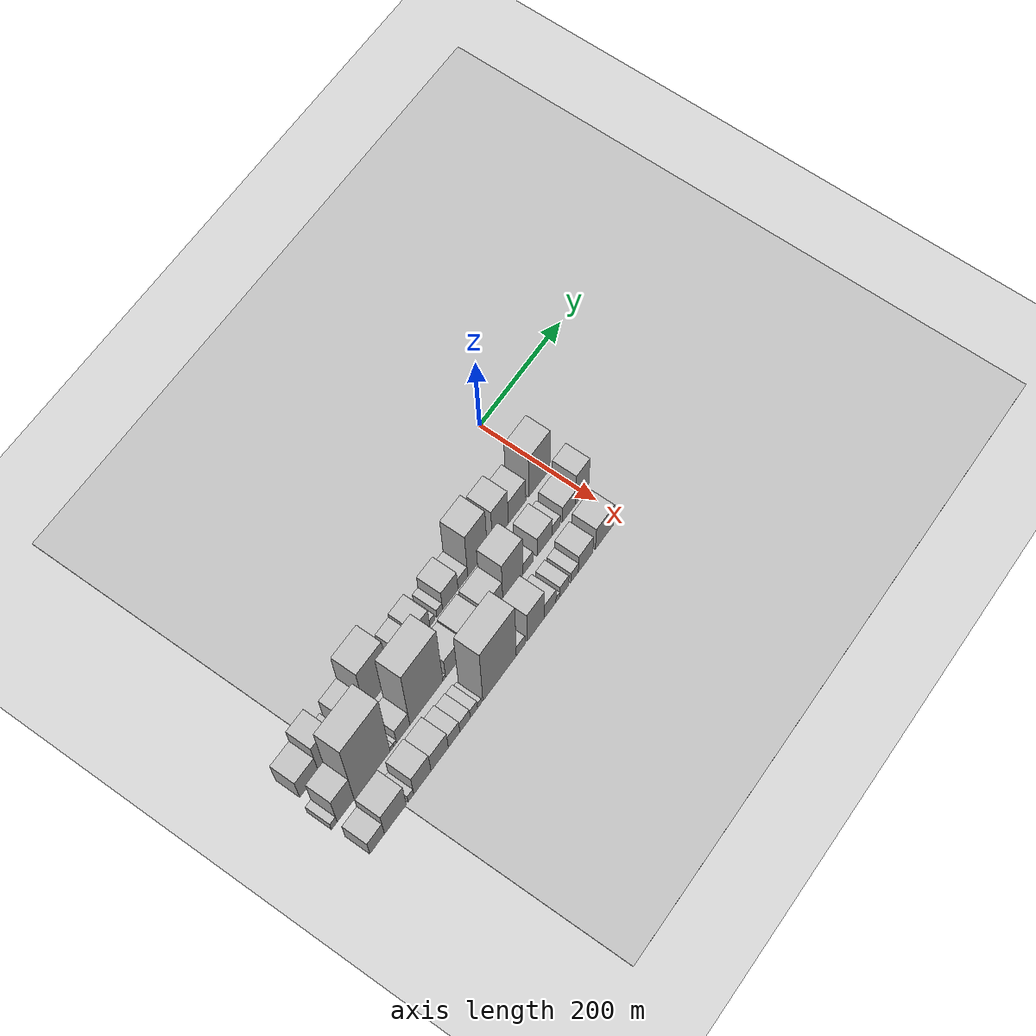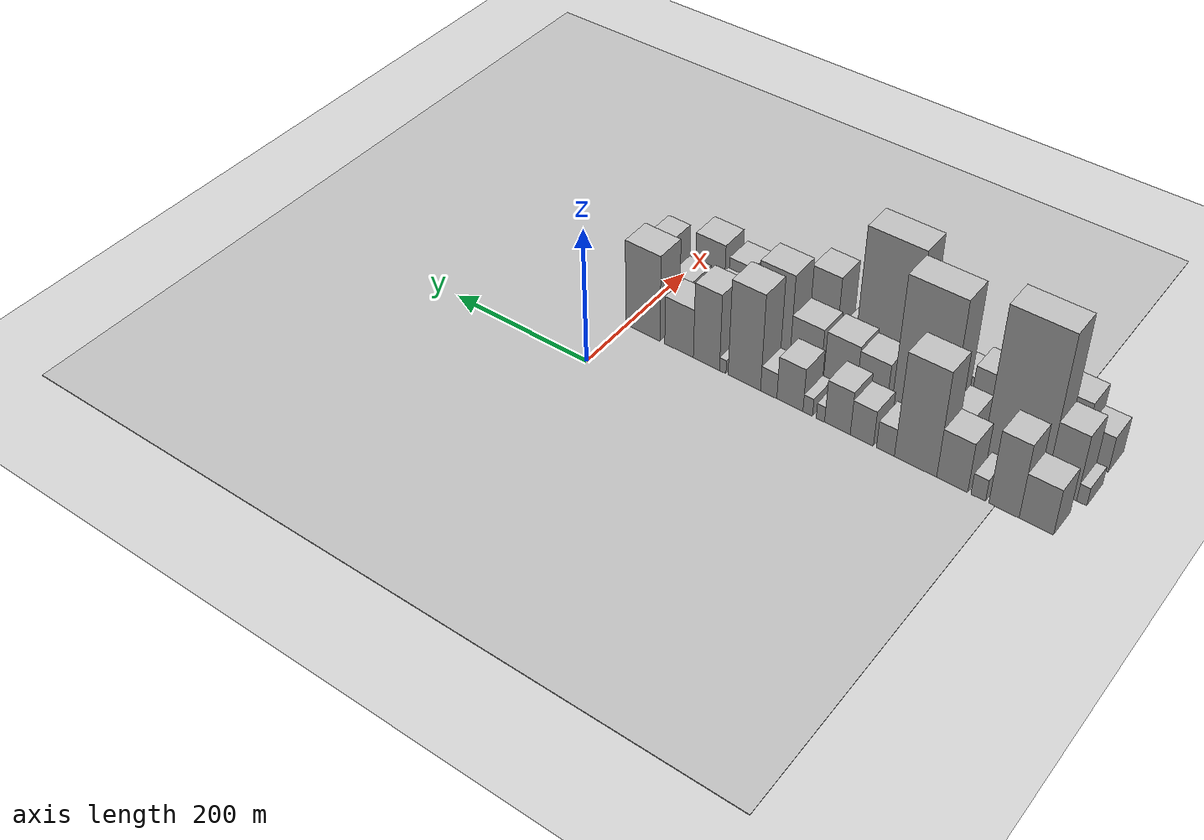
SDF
<sdf version="1.6">
 <world name="default">
  <include><name>ground_plane_1</name><uri>model://HANNAS_ground_plane</uri></include>
  <include>
   <name>ground_plane_2</name>
   <uri>model://HANNAS_ground_plane</uri>
   <pose>100 0 0  0 0 0</pose>
  </include>
  <model name="building_1">
   <static>1</static>
   <pose>100.0000 -549.5142 0 0.000000 0.000000 0.000000</pose>
   <link name="link">
    <pose>0 0 34.50 0 0 0</pose>
    <collision name="collision"><geometry><box><size>40.0000 40.9715 69.0000</size></box></geometry></collision>
    <visual name="visual">
     <cast_shadows>0</cast_shadows>
     <geometry><box><size>40.0000 40.9715 69.0000</size></box></geometry>
     <material>
      <script>
       <uri>model://HANNAS_wall/materials/scripts</uri>
       <uri>model://HANNAS_wall/materials/textures</uri>
       <name>vrc/HANNAS_wall</name>
      </script>
     </material>
    </visual>
   </link>
  </model>
  <model name="building_2">
   <static>1</static>
   <pose>100.0000 -510.6630 0 0.000000 0.000000 0.000000</pose>
   <link name="link">
    <pose>0 0 55.50 0 0 0</pose>
    <collision name="collision"><geometry><box><size>40.0000 36.7310 111.0000</size></box></geometry></collision>
    <visual name="visual">
     <cast_shadows>0</cast_shadows>
     <geometry><box><size>40.0000 36.7310 111.0000</size></box></geometry>
     <material>
      <script>
       <uri>model://HANNAS_wall/materials/scripts</uri>
       <uri>model://HANNAS_wall/materials/textures</uri>
       <name>vrc/HANNAS_wall</name>
      </script>
     </material>
    </visual>
   </link>
  </model>
  <model name="building_3">
   <static>1</static>
   <pose>100.0000 -479.3074 0 0.000000 0.000000 0.000000</pose>
   <link name="link">
    <pose>0 0 16.50 0 0 0</pose>
    <collision name="collision"><geometry><box><size>40.0000 17.9802 33.0000</size></box></geometry></collision>
    <visual name="visual">
     <cast_shadows>0</cast_shadows>
     <geometry><box><size>40.0000 17.9802 33.0000</size></box></geometry>
     <material>
      <script>
       <uri>model://HANNAS_wall/materials/scripts</uri>
       <uri>model://HANNAS_wall/materials/textures</uri>
       <name>vrc/HANNAS_wall</name>
      </script>
     </material>
    </visual>
   </link>
  </model>
  <model name="building_4">
   <static>1</static>
   <pose>100.0000 -446.9701 0 0.000000 0.000000 0.000000</pose>
   <link name="link">
    <pose>0 0 37.50 0 0 0</pose>
    <collision name="collision"><geometry><box><size>40.0000 38.6944 75.0000</size></box></geometry></collision>
    <visual name="visual">
     <cast_shadows>0</cast_shadows>
     <geometry><box><size>40.0000 38.6944 75.0000</size></box></geometry>
     <material>
      <script>
       <uri>model://HANNAS_wall/materials/scripts</uri>
       <uri>model://HANNAS_wall/materials/textures</uri>
       <name>vrc/HANNAS_wall</name>
      </script>
     </material>
    </visual>
   </link>
  </model>
  <model name="building_5">
   <static>1</static>
   <pose>100.0000 -400.6949 0 0.000000 0.000000 0.000000</pose>
   <link name="link">
    <pose>0 0 79.50 0 0 0</pose>
    <collision name="collision"><geometry><box><size>40.0000 53.8561 159.0000</size></box></geometry></collision>
    <visual name="visual">
     <cast_shadows>0</cast_shadows>
     <geometry><box><size>40.0000 53.8561 159.0000</size></box></geometry>
     <material>
      <script>
       <uri>model://HANNAS_wall/materials/scripts</uri>
       <uri>model://HANNAS_wall/materials/textures</uri>
       <name>vrc/HANNAS_wall</name>
      </script>
     </material>
    </visual>
   </link>
  </model>
  <model name="building_6">
   <static>1</static>
   <pose>100.0000 -362.1579 0 0.000000 0.000000 0.000000</pose>
   <link name="link">
    <pose>0 0 21.00 0 0 0</pose>
    <collision name="collision"><geometry><box><size>40.0000 23.2179 42.0000</size></box></geometry></collision>
    <visual name="visual">
     <cast_shadows>0</cast_shadows>
     <geometry><box><size>40.0000 23.2179 42.0000</size></box></geometry>
     <material>
      <script>
       <uri>model://HANNAS_wall/materials/scripts</uri>
       <uri>model://HANNAS_wall/materials/textures</uri>
       <name>vrc/HANNAS_wall</name>
      </script>
     </material>
    </visual>
   </link>
  </model>
  <model name="building_7">
   <static>1</static>
   <pose>100.0000 -331.3385 0 0.000000 0.000000 0.000000</pose>
   <link name="link">
    <pose>0 0 27.00 0 0 0</pose>
    <collision name="collision"><geometry><box><size>40.0000 30.4209 54.0000</size></box></geometry></collision>
    <visual name="visual">
     <cast_shadows>0</cast_shadows>
     <geometry><box><size>40.0000 30.4209 54.0000</size></box></geometry>
     <material>
      <script>
       <uri>model://HANNAS_wall/materials/scripts</uri>
       <uri>model://HANNAS_wall/materials/textures</uri>
       <name>vrc/HANNAS_wall</name>
      </script>
     </material>
    </visual>
   </link>
  </model>
  <model name="building_8">
   <static>1</static>
   <pose>100.0000 -299.0289 0 0.000000 0.000000 0.000000</pose>
   <link name="link">
    <pose>0 0 33.00 0 0 0</pose>
    <collision name="collision"><geometry><box><size>40.0000 34.1982 66.0000</size></box></geometry></collision>
    <visual name="visual">
     <cast_shadows>0</cast_shadows>
     <geometry><box><size>40.0000 34.1982 66.0000</size></box></geometry>
     <material>
      <script>
       <uri>model://HANNAS_wall/materials/scripts</uri>
       <uri>model://HANNAS_wall/materials/textures</uri>
       <name>vrc/HANNAS_wall</name>
      </script>
     </material>
    </visual>
   </link>
  </model>
  <model name="building_9">
   <static>1</static>
   <pose>100.0000 -276.3239 0 0.000000 0.000000 0.000000</pose>
   <link name="link">
    <pose>0 0 12.00 0 0 0</pose>
    <collision name="collision"><geometry><box><size>40.0000 11.2118 24.0000</size></box></geometry></collision>
    <visual name="visual">
     <cast_shadows>0</cast_shadows>
     <geometry><box><size>40.0000 11.2118 24.0000</size></box></geometry>
     <material>
      <script>
       <uri>model://HANNAS_wall/materials/scripts</uri>
       <uri>model://HANNAS_wall/materials/textures</uri>
       <name>vrc/HANNAS_wall</name>
      </script>
     </material>
    </visual>
   </link>
  </model>
  <model name="building_10">
   <static>1</static>
   <pose>100.0000 -259.2312 0 0.000000 0.000000 0.000000</pose>
   <link name="link">
    <pose>0 0 13.50 0 0 0</pose>
    <collision name="collision"><geometry><box><size>40.0000 12.9735 27.0000</size></box></geometry></collision>
    <visual name="visual">
     <cast_shadows>0</cast_shadows>
     <geometry><box><size>40.0000 12.9735 27.0000</size></box></geometry>
     <material>
      <script>
       <uri>model://HANNAS_wall/materials/scripts</uri>
       <uri>model://HANNAS_wall/materials/textures</uri>
       <name>vrc/HANNAS_wall</name>
      </script>
     </material>
    </visual>
   </link>
  </model>
  <model name="building_11">
   <static>1</static>
   <pose>100.0000 -234.8249 0 0.000000 0.000000 0.000000</pose>
   <link name="link">
    <pose>0 0 33.00 0 0 0</pose>
    <collision name="collision"><geometry><box><size>40.0000 35.8391 66.0000</size></box></geometry></collision>
    <visual name="visual">
     <cast_shadows>0</cast_shadows>
     <geometry><box><size>40.0000 35.8391 66.0000</size></box></geometry>
     <material>
      <script>
       <uri>model://HANNAS_wall/materials/scripts</uri>
       <uri>model://HANNAS_wall/materials/textures</uri>
       <name>vrc/HANNAS_wall</name>
      </script>
     </material>
    </visual>
   </link>
  </model>
  <model name="building_12">
   <static>1</static>
   <pose>100.0000 -205.6137 0 0.000000 0.000000 0.000000</pose>
   <link name="link">
    <pose>0 0 19.50 0 0 0</pose>
    <collision name="collision"><geometry><box><size>40.0000 22.5834 39.0000</size></box></geometry></collision>
    <visual name="visual">
     <cast_shadows>0</cast_shadows>
     <geometry><box><size>40.0000 22.5834 39.0000</size></box></geometry>
     <material>
      <script>
       <uri>model://HANNAS_wall/materials/scripts</uri>
       <uri>model://HANNAS_wall/materials/textures</uri>
       <name>vrc/HANNAS_wall</name>
      </script>
     </material>
    </visual>
   </link>
  </model>
  <model name="building_13">
   <static>1</static>
   <pose>100.0000 -171.4702 0 0.000000 0.000000 0.000000</pose>
   <link name="link">
    <pose>0 0 73.50 0 0 0</pose>
    <collision name="collision"><geometry><box><size>40.0000 45.7037 147.0000</size></box></geometry></collision>
    <visual name="visual">
     <cast_shadows>0</cast_shadows>
     <geometry><box><size>40.0000 45.7037 147.0000</size></box></geometry>
     <material>
      <script>
       <uri>model://HANNAS_wall/materials/scripts</uri>
       <uri>model://HANNAS_wall/materials/textures</uri>
       <name>vrc/HANNAS_wall</name>
      </script>
     </material>
    </visual>
   </link>
  </model>
  <model name="building_14">
   <static>1</static>
   <pose>100.0000 -140.9780 0 0.000000 0.000000 0.000000</pose>
   <link name="link">
    <pose>0 0 10.50 0 0 0</pose>
    <collision name="collision"><geometry><box><size>40.0000 9.2807 21.0000</size></box></geometry></collision>
    <visual name="visual">
     <cast_shadows>0</cast_shadows>
     <geometry><box><size>40.0000 9.2807 21.0000</size></box></geometry>
     <material>
      <script>
       <uri>model://HANNAS_wall/materials/scripts</uri>
       <uri>model://HANNAS_wall/materials/textures</uri>
       <name>vrc/HANNAS_wall</name>
      </script>
     </material>
    </visual>
   </link>
  </model>
  <model name="building_15">
   <static>1</static>
   <pose>100.0000 -117.5047 0 0.000000 0.000000 0.000000</pose>
   <link name="link">
    <pose>0 0 58.50 0 0 0</pose>
    <collision name="collision"><geometry><box><size>40.0000 37.6661 117.0000</size></box></geometry></collision>
    <visual name="visual">
     <cast_shadows>0</cast_shadows>
     <geometry><box><size>40.0000 37.6661 117.0000</size></box></geometry>
     <material>
      <script>
       <uri>model://HANNAS_wall/materials/scripts</uri>
       <uri>model://HANNAS_wall/materials/textures</uri>
       <name>vrc/HANNAS_wall</name>
      </script>
     </material>
    </visual>
   </link>
  </model>
  <model name="building_16">
   <static>1</static>
   <pose>100.0000 -77.7302 0 0.000000 0.000000 0.000000</pose>
   <link name="link">
    <pose>0 0 37.50 0 0 0</pose>
    <collision name="collision"><geometry><box><size>40.0000 41.8828 75.0000</size></box></geometry></collision>
    <visual name="visual">
     <cast_shadows>0</cast_shadows>
     <geometry><box><size>40.0000 41.8828 75.0000</size></box></geometry>
     <material>
      <script>
       <uri>model://HANNAS_wall/materials/scripts</uri>
       <uri>model://HANNAS_wall/materials/textures</uri>
       <name>vrc/HANNAS_wall</name>
      </script>
     </material>
    </visual>
   </link>
  </model>
  <model name="building_17">
   <static>1</static>
   <pose>100.0000 -24.1237 0 0.000000 0.000000 0.000000</pose>
   <link name="link">
    <pose>0 0 66.00 0 0 0</pose>
    <collision name="collision"><geometry><box><size>40.0000 51.3303 132.0000</size></box></geometry></collision>
    <visual name="visual">
     <cast_shadows>0</cast_shadows>
     <geometry><box><size>40.0000 51.3303 132.0000</size></box></geometry>
     <material>
      <script>
       <uri>model://HANNAS_wall/materials/scripts</uri>
       <uri>model://HANNAS_wall/materials/textures</uri>
       <name>vrc/HANNAS_wall</name>
      </script>
     </material>
    </visual>
   </link>
  </model>
  <model name="building_35">
   <static>1</static>
   <pose>160.0000 -573.9168 0 0.000000 0.000000 0.000000</pose>
   <link name="link">
    <pose>0 0 13.50 0 0 0</pose>
    <collision name="collision"><geometry><box><size>40.0000 12.1663 27.0000</size></box></geometry></collision>
    <visual name="visual">
     <cast_shadows>0</cast_shadows>
     <geometry><box><size>40.0000 12.1663 27.0000</size></box></geometry>
     <material>
      <script>
       <uri>model://HANNAS_wall/materials/scripts</uri>
       <uri>model://HANNAS_wall/materials/textures</uri>
       <name>vrc/HANNAS_wall</name>
      </script>
     </material>
    </visual>
   </link>
  </model>
  <model name="building_36">
   <static>1</static>
   <pose>160.0000 -549.4034 0 0.000000 0.000000 0.000000</pose>
   <link name="link">
    <pose>0 0 49.50 0 0 0</pose>
    <collision name="collision"><geometry><box><size>40.0000 36.8605 99.0000</size></box></geometry></collision>
    <visual name="visual">
     <cast_shadows>0</cast_shadows>
     <geometry><box><size>40.0000 36.8605 99.0000</size></box></geometry>
     <material>
      <script>
       <uri>model://HANNAS_wall/materials/scripts</uri>
       <uri>model://HANNAS_wall/materials/textures</uri>
       <name>vrc/HANNAS_wall</name>
      </script>
     </material>
    </visual>
   </link>
  </model>
  <model name="building_37">
   <static>1</static>
   <pose>160.0000 -491.6236 0 0.000000 0.000000 0.000000</pose>
   <link name="link">
    <pose>0 0 112.50 0 0 0</pose>
    <collision name="collision"><geometry><box><size>40.0000 78.6990 225.0000</size></box></geometry></collision>
    <visual name="visual">
     <cast_shadows>0</cast_shadows>
     <geometry><box><size>40.0000 78.6990 225.0000</size></box></geometry>
     <material>
      <script>
       <uri>model://HANNAS_wall/materials/scripts</uri>
       <uri>model://HANNAS_wall/materials/textures</uri>
       <name>vrc/HANNAS_wall</name>
      </script>
     </material>
    </visual>
   </link>
  </model>
  <model name="building_38">
   <static>1</static>
   <pose>160.0000 -448.5297 0 0.000000 0.000000 0.000000</pose>
   <link name="link">
    <pose>0 0 7.50 0 0 0</pose>
    <collision name="collision"><geometry><box><size>40.0000 7.4889 15.0000</size></box></geometry></collision>
    <visual name="visual">
     <cast_shadows>0</cast_shadows>
     <geometry><box><size>40.0000 7.4889 15.0000</size></box></geometry>
     <material>
      <script>
       <uri>model://HANNAS_wall/materials/scripts</uri>
       <uri>model://HANNAS_wall/materials/textures</uri>
       <name>vrc/HANNAS_wall</name>
      </script>
     </material>
    </visual>
   </link>
  </model>
  <model name="building_39">
   <static>1</static>
   <pose>160.0000 -441.5887 0 0.000000 0.000000 0.000000</pose>
   <link name="link">
    <pose>0 0 7.50 0 0 0</pose>
    <collision name="collision"><geometry><box><size>40.0000 6.3932 15.0000</size></box></geometry></collision>
    <visual name="visual">
     <cast_shadows>0</cast_shadows>
     <geometry><box><size>40.0000 6.3932 15.0000</size></box></geometry>
     <material>
      <script>
       <uri>model://HANNAS_wall/materials/scripts</uri>
       <uri>model://HANNAS_wall/materials/textures</uri>
       <name>vrc/HANNAS_wall</name>
      </script>
     </material>
    </visual>
   </link>
  </model>
  <model name="building_40">
   <static>1</static>
   <pose>160.0000 -423.5004 0 0.000000 0.000000 0.000000</pose>
   <link name="link">
    <pose>0 0 27.00 0 0 0</pose>
    <collision name="collision"><geometry><box><size>40.0000 29.7834 54.0000</size></box></geometry></collision>
    <visual name="visual">
     <cast_shadows>0</cast_shadows>
     <geometry><box><size>40.0000 29.7834 54.0000</size></box></geometry>
     <material>
      <script>
       <uri>model://HANNAS_wall/materials/scripts</uri>
       <uri>model://HANNAS_wall/materials/textures</uri>
       <name>vrc/HANNAS_wall</name>
      </script>
     </material>
    </visual>
   </link>
  </model>
  <model name="building_41">
   <static>1</static>
   <pose>160.0000 -371.4019 0 0.000000 0.000000 0.000000</pose>
   <link name="link">
    <pose>0 0 103.50 0 0 0</pose>
    <collision name="collision"><geometry><box><size>40.0000 74.4134 207.0000</size></box></geometry></collision>
    <visual name="visual">
     <cast_shadows>0</cast_shadows>
     <geometry><box><size>40.0000 74.4134 207.0000</size></box></geometry>
     <material>
      <script>
       <uri>model://HANNAS_wall/materials/scripts</uri>
       <uri>model://HANNAS_wall/materials/textures</uri>
       <name>vrc/HANNAS_wall</name>
      </script>
     </material>
    </visual>
   </link>
  </model>
  <model name="building_42">
   <static>1</static>
   <pose>160.0000 -331.1352 0 0.000000 0.000000 0.000000</pose>
   <link name="link">
    <pose>0 0 7.50 0 0 0</pose>
    <collision name="collision"><geometry><box><size>40.0000 6.1200 15.0000</size></box></geometry></collision>
    <visual name="visual">
     <cast_shadows>0</cast_shadows>
     <geometry><box><size>40.0000 6.1200 15.0000</size></box></geometry>
     <material>
      <script>
       <uri>model://HANNAS_wall/materials/scripts</uri>
       <uri>model://HANNAS_wall/materials/textures</uri>
       <name>vrc/HANNAS_wall</name>
      </script>
     </material>
    </visual>
   </link>
  </model>
  <model name="building_43">
   <static>1</static>
   <pose>160.0000 -307.8926 0 0.000000 0.000000 0.000000</pose>
   <link name="link">
    <pose>0 0 34.50 0 0 0</pose>
    <collision name="collision"><geometry><box><size>40.0000 40.3653 69.0000</size></box></geometry></collision>
    <visual name="visual">
     <cast_shadows>0</cast_shadows>
     <geometry><box><size>40.0000 40.3653 69.0000</size></box></geometry>
     <material>
      <script>
       <uri>model://HANNAS_wall/materials/scripts</uri>
       <uri>model://HANNAS_wall/materials/textures</uri>
       <name>vrc/HANNAS_wall</name>
      </script>
     </material>
    </visual>
   </link>
  </model>
  <model name="building_44">
   <static>1</static>
   <pose>160.0000 -265.3622 0 0.000000 0.000000 0.000000</pose>
   <link name="link">
    <pose>0 0 37.50 0 0 0</pose>
    <collision name="collision"><geometry><box><size>40.0000 44.6956 75.0000</size></box></geometry></collision>
    <visual name="visual">
     <cast_shadows>0</cast_shadows>
     <geometry><box><size>40.0000 44.6956 75.0000</size></box></geometry>
     <material>
      <script>
       <uri>model://HANNAS_wall/materials/scripts</uri>
       <uri>model://HANNAS_wall/materials/textures</uri>
       <name>vrc/HANNAS_wall</name>
      </script>
     </material>
    </visual>
   </link>
  </model>
  <model name="building_45">
   <static>1</static>
   <pose>160.0000 -217.4065 0 0.000000 0.000000 0.000000</pose>
   <link name="link">
    <pose>0 0 37.50 0 0 0</pose>
    <collision name="collision"><geometry><box><size>40.0000 43.2156 75.0000</size></box></geometry></collision>
    <visual name="visual">
     <cast_shadows>0</cast_shadows>
     <geometry><box><size>40.0000 43.2156 75.0000</size></box></geometry>
     <material>
      <script>
       <uri>model://HANNAS_wall/materials/scripts</uri>
       <uri>model://HANNAS_wall/materials/textures</uri>
       <name>vrc/HANNAS_wall</name>
      </script>
     </material>
    </visual>
   </link>
  </model>
  <model name="building_46">
   <static>1</static>
   <pose>160.0000 -172.0461 0 0.000000 0.000000 0.000000</pose>
   <link name="link">
    <pose>0 0 67.50 0 0 0</pose>
    <collision name="collision"><geometry><box><size>40.0000 47.5053 135.0000</size></box></geometry></collision>
    <visual name="visual">
     <cast_shadows>0</cast_shadows>
     <geometry><box><size>40.0000 47.5053 135.0000</size></box></geometry>
     <material>
      <script>
       <uri>model://HANNAS_wall/materials/scripts</uri>
       <uri>model://HANNAS_wall/materials/textures</uri>
       <name>vrc/HANNAS_wall</name>
      </script>
     </material>
    </visual>
   </link>
  </model>
  <model name="building_47">
   <static>1</static>
   <pose>160.0000 -136.6399 0 0.000000 0.000000 0.000000</pose>
   <link name="link">
    <pose>0 0 19.50 0 0 0</pose>
    <collision name="collision"><geometry><box><size>40.0000 23.3071 39.0000</size></box></geometry></collision>
    <visual name="visual">
     <cast_shadows>0</cast_shadows>
     <geometry><box><size>40.0000 23.3071 39.0000</size></box></geometry>
     <material>
      <script>
       <uri>model://HANNAS_wall/materials/scripts</uri>
       <uri>model://HANNAS_wall/materials/textures</uri>
       <name>vrc/HANNAS_wall</name>
      </script>
     </material>
    </visual>
   </link>
  </model>
  <model name="building_48">
   <static>1</static>
   <pose>160.0000 -96.7588 0 0.000000 0.000000 0.000000</pose>
   <link name="link">
    <pose>0 0 31.50 0 0 0</pose>
    <collision name="collision"><geometry><box><size>40.0000 36.4550 63.0000</size></box></geometry></collision>
    <visual name="visual">
     <cast_shadows>0</cast_shadows>
     <geometry><box><size>40.0000 36.4550 63.0000</size></box></geometry>
     <material>
      <script>
       <uri>model://HANNAS_wall/materials/scripts</uri>
       <uri>model://HANNAS_wall/materials/textures</uri>
       <name>vrc/HANNAS_wall</name>
      </script>
     </material>
    </visual>
   </link>
  </model>
  <model name="building_49">
   <static>1</static>
   <pose>160.0000 -68.9555 0 0.000000 0.000000 0.000000</pose>
   <link name="link">
    <pose>0 0 18.00 0 0 0</pose>
    <collision name="collision"><geometry><box><size>40.0000 19.1515 36.0000</size></box></geometry></collision>
    <visual name="visual">
     <cast_shadows>0</cast_shadows>
     <geometry><box><size>40.0000 19.1515 36.0000</size></box></geometry>
     <material>
      <script>
       <uri>model://HANNAS_wall/materials/scripts</uri>
       <uri>model://HANNAS_wall/materials/textures</uri>
       <name>vrc/HANNAS_wall</name>
      </script>
     </material>
    </visual>
   </link>
  </model>
  <model name="building_50">
   <static>1</static>
   <pose>160.0000 -38.3128 0 0.000000 0.000000 0.000000</pose>
   <link name="link">
    <pose>0 0 27.00 0 0 0</pose>
    <collision name="collision"><geometry><box><size>40.0000 32.1339 54.0000</size></box></geometry></collision>
    <visual name="visual">
     <cast_shadows>0</cast_shadows>
     <geometry><box><size>40.0000 32.1339 54.0000</size></box></geometry>
     <material>
      <script>
       <uri>model://HANNAS_wall/materials/scripts</uri>
       <uri>model://HANNAS_wall/materials/textures</uri>
       <name>vrc/HANNAS_wall</name>
      </script>
     </material>
    </visual>
   </link>
  </model>
  <model name="building_51">
   <static>1</static>
   <pose>160.0000 -6.1934 0 0.000000 0.000000 0.000000</pose>
   <link name="link">
    <pose>0 0 51.00 0 0 0</pose>
    <collision name="collision"><geometry><box><size>40.0000 32.1048 102.0000</size></box></geometry></collision>
    <visual name="visual">
     <cast_shadows>0</cast_shadows>
     <geometry><box><size>40.0000 32.1048 102.0000</size></box></geometry>
     <material>
      <script>
       <uri>model://HANNAS_wall/materials/scripts</uri>
       <uri>model://HANNAS_wall/materials/textures</uri>
       <name>vrc/HANNAS_wall</name>
      </script>
     </material>
    </visual>
   </link>
  </model>
  <model name="building_69">
   <static>1</static>
   <pose>220.0000 -561.0110 0 0.000000 0.000000 0.000000</pose>
   <link name="link">
    <pose>0 0 27.00 0 0 0</pose>
    <collision name="collision"><geometry><box><size>40.0000 31.9781 54.0000</size></box></geometry></collision>
    <visual name="visual">
     <cast_shadows>0</cast_shadows>
     <geometry><box><size>40.0000 31.9781 54.0000</size></box></geometry>
     <material>
      <script>
       <uri>model://HANNAS_wall/materials/scripts</uri>
       <uri>model://HANNAS_wall/materials/textures</uri>
       <name>vrc/HANNAS_wall</name>
      </script>
     </material>
    </visual>
   </link>
  </model>
  <model name="building_70">
   <static>1</static>
   <pose>220.0000 -521.2297 0 0.000000 0.000000 0.000000</pose>
   <link name="link">
    <pose>0 0 43.50 0 0 0</pose>
    <collision name="collision"><geometry><box><size>40.0000 47.5845 87.0000</size></box></geometry></collision>
    <visual name="visual">
     <cast_shadows>0</cast_shadows>
     <geometry><box><size>40.0000 47.5845 87.0000</size></box></geometry>
     <material>
      <script>
       <uri>model://HANNAS_wall/materials/scripts</uri>
       <uri>model://HANNAS_wall/materials/textures</uri>
       <name>vrc/HANNAS_wall</name>
      </script>
     </material>
    </visual>
   </link>
  </model>
  <model name="building_71">
   <static>1</static>
   <pose>220.0000 -487.2332 0 0.000000 0.000000 0.000000</pose>
   <link name="link">
    <pose>0 0 13.50 0 0 0</pose>
    <collision name="collision"><geometry><box><size>40.0000 12.4085 27.0000</size></box></geometry></collision>
    <visual name="visual">
     <cast_shadows>0</cast_shadows>
     <geometry><box><size>40.0000 12.4085 27.0000</size></box></geometry>
     <material>
      <script>
       <uri>model://HANNAS_wall/materials/scripts</uri>
       <uri>model://HANNAS_wall/materials/textures</uri>
       <name>vrc/HANNAS_wall</name>
      </script>
     </material>
    </visual>
   </link>
  </model>
  <model name="building_72">
   <static>1</static>
   <pose>220.0000 -461.9582 0 0.000000 0.000000 0.000000</pose>
   <link name="link">
    <pose>0 0 37.50 0 0 0</pose>
    <collision name="collision"><geometry><box><size>40.0000 38.1415 75.0000</size></box></geometry></collision>
    <visual name="visual">
     <cast_shadows>0</cast_shadows>
     <geometry><box><size>40.0000 38.1415 75.0000</size></box></geometry>
     <material>
      <script>
       <uri>model://HANNAS_wall/materials/scripts</uri>
       <uri>model://HANNAS_wall/materials/textures</uri>
       <name>vrc/HANNAS_wall</name>
      </script>
     </material>
    </visual>
   </link>
  </model>
  <model name="building_73">
   <static>1</static>
   <pose>220.0000 -423.5347 0 0.000000 0.000000 0.000000</pose>
   <link name="link">
    <pose>0 0 33.00 0 0 0</pose>
    <collision name="collision"><geometry><box><size>40.0000 38.7054 66.0000</size></box></geometry></collision>
    <visual name="visual">
     <cast_shadows>0</cast_shadows>
     <geometry><box><size>40.0000 38.7054 66.0000</size></box></geometry>
     <material>
      <script>
       <uri>model://HANNAS_wall/materials/scripts</uri>
       <uri>model://HANNAS_wall/materials/textures</uri>
       <name>vrc/HANNAS_wall</name>
      </script>
     </material>
    </visual>
   </link>
  </model>
  <model name="building_74">
   <static>1</static>
   <pose>220.0000 -391.2418 0 0.000000 0.000000 0.000000</pose>
   <link name="link">
    <pose>0 0 24.00 0 0 0</pose>
    <collision name="collision"><geometry><box><size>40.0000 25.8805 48.0000</size></box></geometry></collision>
    <visual name="visual">
     <cast_shadows>0</cast_shadows>
     <geometry><box><size>40.0000 25.8805 48.0000</size></box></geometry>
     <material>
      <script>
       <uri>model://HANNAS_wall/materials/scripts</uri>
       <uri>model://HANNAS_wall/materials/textures</uri>
       <name>vrc/HANNAS_wall</name>
      </script>
     </material>
    </visual>
   </link>
  </model>
  <model name="building_75">
   <static>1</static>
   <pose>220.0000 -366.6209 0 0.000000 0.000000 0.000000</pose>
   <link name="link">
    <pose>0 0 19.50 0 0 0</pose>
    <collision name="collision"><geometry><box><size>40.0000 23.3611 39.0000</size></box></geometry></collision>
    <visual name="visual">
     <cast_shadows>0</cast_shadows>
     <geometry><box><size>40.0000 23.3611 39.0000</size></box></geometry>
     <material>
      <script>
       <uri>model://HANNAS_wall/materials/scripts</uri>
       <uri>model://HANNAS_wall/materials/textures</uri>
       <name>vrc/HANNAS_wall</name>
      </script>
     </material>
    </visual>
   </link>
  </model>
  <model name="building_76">
   <static>1</static>
   <pose>220.0000 -346.5550 0 0.000000 0.000000 0.000000</pose>
   <link name="link">
    <pose>0 0 16.50 0 0 0</pose>
    <collision name="collision"><geometry><box><size>40.0000 16.7708 33.0000</size></box></geometry></collision>
    <visual name="visual">
     <cast_shadows>0</cast_shadows>
     <geometry><box><size>40.0000 16.7708 33.0000</size></box></geometry>
     <material>
      <script>
       <uri>model://HANNAS_wall/materials/scripts</uri>
       <uri>model://HANNAS_wall/materials/textures</uri>
       <name>vrc/HANNAS_wall</name>
      </script>
     </material>
    </visual>
   </link>
  </model>
  <model name="building_77">
   <static>1</static>
   <pose>220.0000 -333.5592 0 0.000000 0.000000 0.000000</pose>
   <link name="link">
    <pose>0 0 10.50 0 0 0</pose>
    <collision name="collision"><geometry><box><size>40.0000 9.2207 21.0000</size></box></geometry></collision>
    <visual name="visual">
     <cast_shadows>0</cast_shadows>
     <geometry><box><size>40.0000 9.2207 21.0000</size></box></geometry>
     <material>
      <script>
       <uri>model://HANNAS_wall/materials/scripts</uri>
       <uri>model://HANNAS_wall/materials/textures</uri>
       <name>vrc/HANNAS_wall</name>
      </script>
     </material>
    </visual>
   </link>
  </model>
  <model name="building_78">
   <static>1</static>
   <pose>220.0000 -287.4759 0 0.000000 0.000000 0.000000</pose>
   <link name="link">
    <pose>0 0 97.50 0 0 0</pose>
    <collision name="collision"><geometry><box><size>40.0000 76.9459 195.0000</size></box></geometry></collision>
    <visual name="visual">
     <cast_shadows>0</cast_shadows>
     <geometry><box><size>40.0000 76.9459 195.0000</size></box></geometry>
     <material>
      <script>
       <uri>model://HANNAS_wall/materials/scripts</uri>
       <uri>model://HANNAS_wall/materials/textures</uri>
       <name>vrc/HANNAS_wall</name>
      </script>
     </material>
    </visual>
   </link>
  </model>
  <model name="building_79">
   <static>1</static>
   <pose>220.0000 -238.7921 0 0.000000 0.000000 0.000000</pose>
   <link name="link">
    <pose>0 0 18.00 0 0 0</pose>
    <collision name="collision"><geometry><box><size>40.0000 20.4217 36.0000</size></box></geometry></collision>
    <visual name="visual">
     <cast_shadows>0</cast_shadows>
     <geometry><box><size>40.0000 20.4217 36.0000</size></box></geometry>
     <material>
      <script>
       <uri>model://HANNAS_wall/materials/scripts</uri>
       <uri>model://HANNAS_wall/materials/textures</uri>
       <name>vrc/HANNAS_wall</name>
      </script>
     </material>
    </visual>
   </link>
  </model>
  <model name="building_80">
   <static>1</static>
   <pose>220.0000 -203.3691 0 0.000000 0.000000 0.000000</pose>
   <link name="link">
    <pose>0 0 52.50 0 0 0</pose>
    <collision name="collision"><geometry><box><size>40.0000 40.4243 105.0000</size></box></geometry></collision>
    <visual name="visual">
     <cast_shadows>0</cast_shadows>
     <geometry><box><size>40.0000 40.4243 105.0000</size></box></geometry>
     <material>
      <script>
       <uri>model://HANNAS_wall/materials/scripts</uri>
       <uri>model://HANNAS_wall/materials/textures</uri>
       <name>vrc/HANNAS_wall</name>
      </script>
     </material>
    </visual>
   </link>
  </model>
  <model name="building_81">
   <static>1</static>
   <pose>220.0000 -169.4666 0 0.000000 0.000000 0.000000</pose>
   <link name="link">
    <pose>0 0 25.50 0 0 0</pose>
    <collision name="collision"><geometry><box><size>40.0000 27.3806 51.0000</size></box></geometry></collision>
    <visual name="visual">
     <cast_shadows>0</cast_shadows>
     <geometry><box><size>40.0000 27.3806 51.0000</size></box></geometry>
     <material>
      <script>
       <uri>model://HANNAS_wall/materials/scripts</uri>
       <uri>model://HANNAS_wall/materials/textures</uri>
       <name>vrc/HANNAS_wall</name>
      </script>
     </material>
    </visual>
   </link>
  </model>
  <model name="building_82">
   <static>1</static>
   <pose>220.0000 -151.0858 0 0.000000 0.000000 0.000000</pose>
   <link name="link">
    <pose>0 0 10.50 0 0 0</pose>
    <collision name="collision"><geometry><box><size>40.0000 9.3810 21.0000</size></box></geometry></collision>
    <visual name="visual">
     <cast_shadows>0</cast_shadows>
     <geometry><box><size>40.0000 9.3810 21.0000</size></box></geometry>
     <material>
      <script>
       <uri>model://HANNAS_wall/materials/scripts</uri>
       <uri>model://HANNAS_wall/materials/textures</uri>
       <name>vrc/HANNAS_wall</name>
      </script>
     </material>
    </visual>
   </link>
  </model>
  <model name="building_83">
   <static>1</static>
   <pose>220.0000 -135.8429 0 0.000000 0.000000 0.000000</pose>
   <link name="link">
    <pose>0 0 19.50 0 0 0</pose>
    <collision name="collision"><geometry><box><size>40.0000 21.1049 39.0000</size></box></geometry></collision>
    <visual name="visual">
     <cast_shadows>0</cast_shadows>
     <geometry><box><size>40.0000 21.1049 39.0000</size></box></geometry>
     <material>
      <script>
       <uri>model://HANNAS_wall/materials/scripts</uri>
       <uri>model://HANNAS_wall/materials/textures</uri>
       <name>vrc/HANNAS_wall</name>
      </script>
     </material>
    </visual>
   </link>
  </model>
  <model name="building_84">
   <static>1</static>
   <pose>220.0000 -111.2572 0 0.000000 0.000000 0.000000</pose>
   <link name="link">
    <pose>0 0 18.00 0 0 0</pose>
    <collision name="collision"><geometry><box><size>40.0000 18.0665 36.0000</size></box></geometry></collision>
    <visual name="visual">
     <cast_shadows>0</cast_shadows>
     <geometry><box><size>40.0000 18.0665 36.0000</size></box></geometry>
     <material>
      <script>
       <uri>model://HANNAS_wall/materials/scripts</uri>
       <uri>model://HANNAS_wall/materials/textures</uri>
       <name>vrc/HANNAS_wall</name>
      </script>
     </material>
    </visual>
   </link>
  </model>
  <model name="building_85">
   <static>1</static>
   <pose>220.0000 -84.6697 0 0.000000 0.000000 0.000000</pose>
   <link name="link">
    <pose>0 0 30.00 0 0 0</pose>
    <collision name="collision"><geometry><box><size>40.0000 35.1085 60.0000</size></box></geometry></collision>
    <visual name="visual">
     <cast_shadows>0</cast_shadows>
     <geometry><box><size>40.0000 35.1085 60.0000</size></box></geometry>
     <material>
      <script>
       <uri>model://HANNAS_wall/materials/scripts</uri>
       <uri>model://HANNAS_wall/materials/textures</uri>
       <name>vrc/HANNAS_wall</name>
      </script>
     </material>
    </visual>
   </link>
  </model>
  <model name="building_86">
   <static>1</static>
   <pose>220.0000 -39.1715 0 0.000000 0.000000 0.000000</pose>
   <link name="link">
    <pose>0 0 37.50 0 0 0</pose>
    <collision name="collision"><geometry><box><size>40.0000 43.8878 75.0000</size></box></geometry></collision>
    <visual name="visual">
     <cast_shadows>0</cast_shadows>
     <geometry><box><size>40.0000 43.8878 75.0000</size></box></geometry>
     <material>
      <script>
       <uri>model://HANNAS_wall/materials/scripts</uri>
       <uri>model://HANNAS_wall/materials/textures</uri>
       <name>vrc/HANNAS_wall</name>
      </script>
     </material>
    </visual>
   </link>
  </model>
 </world>
</sdf>
